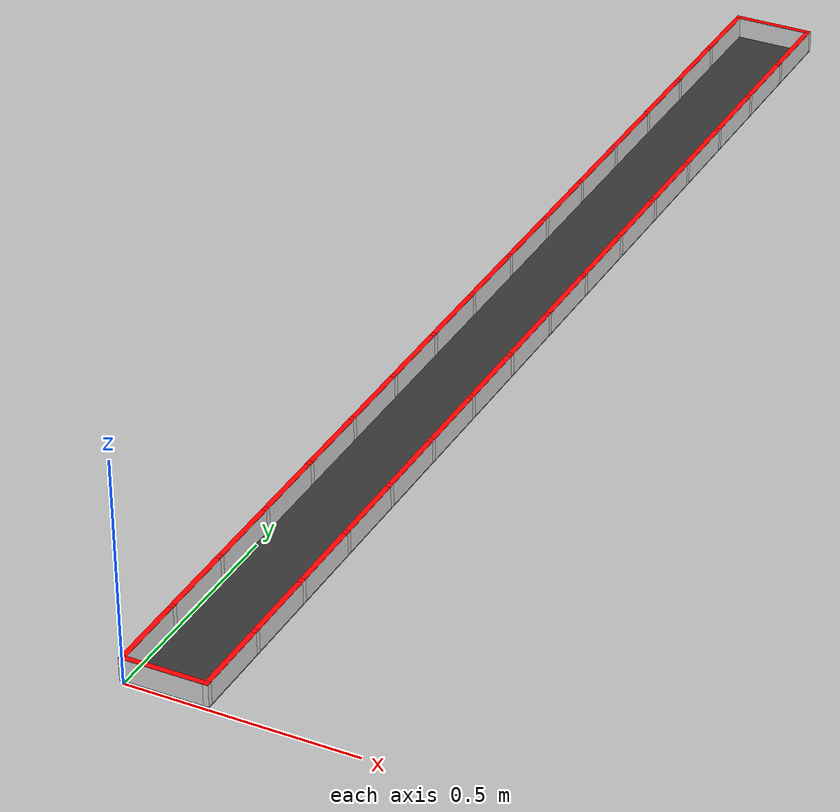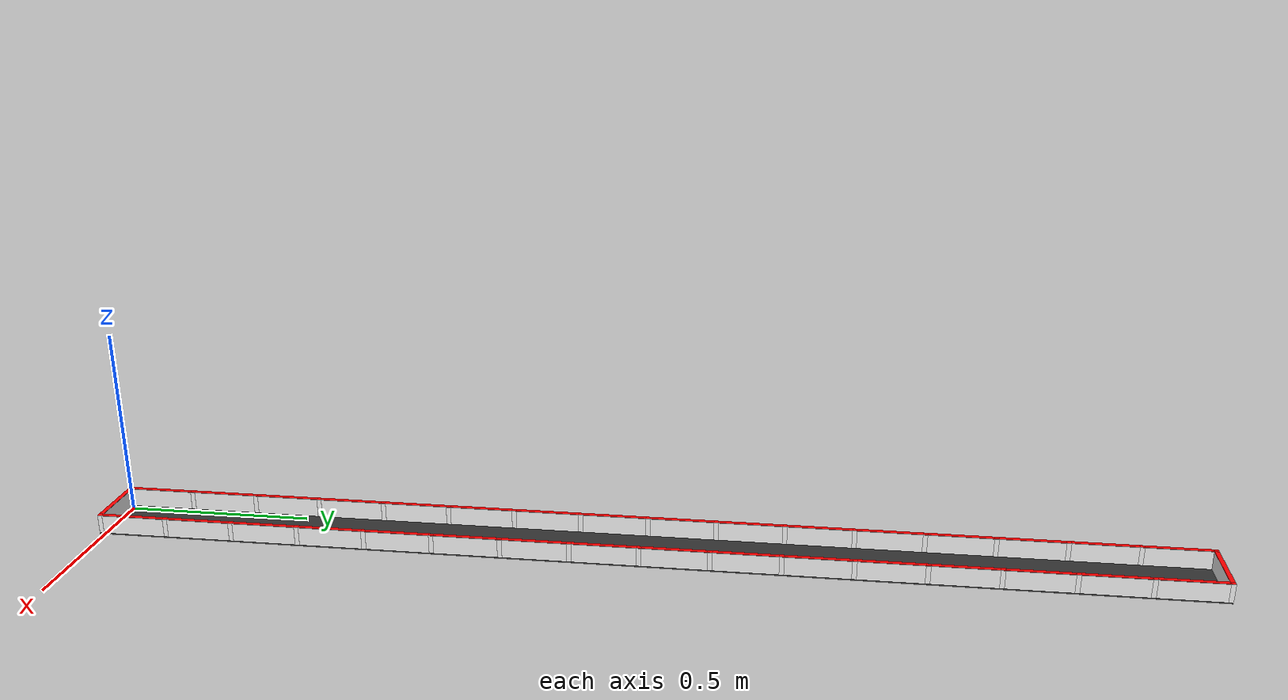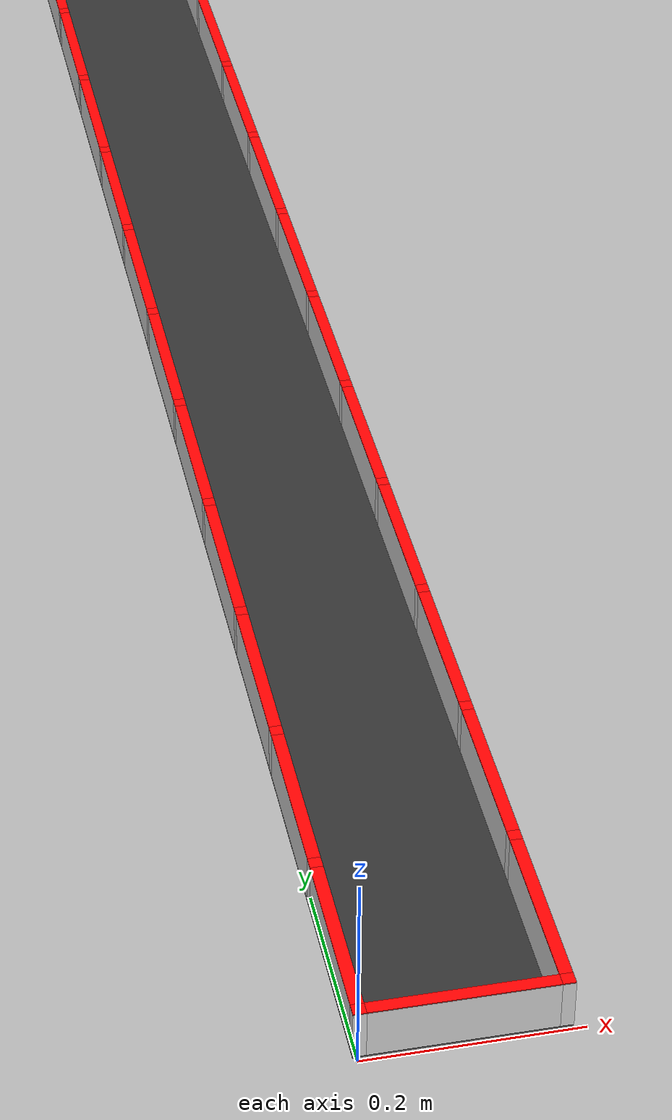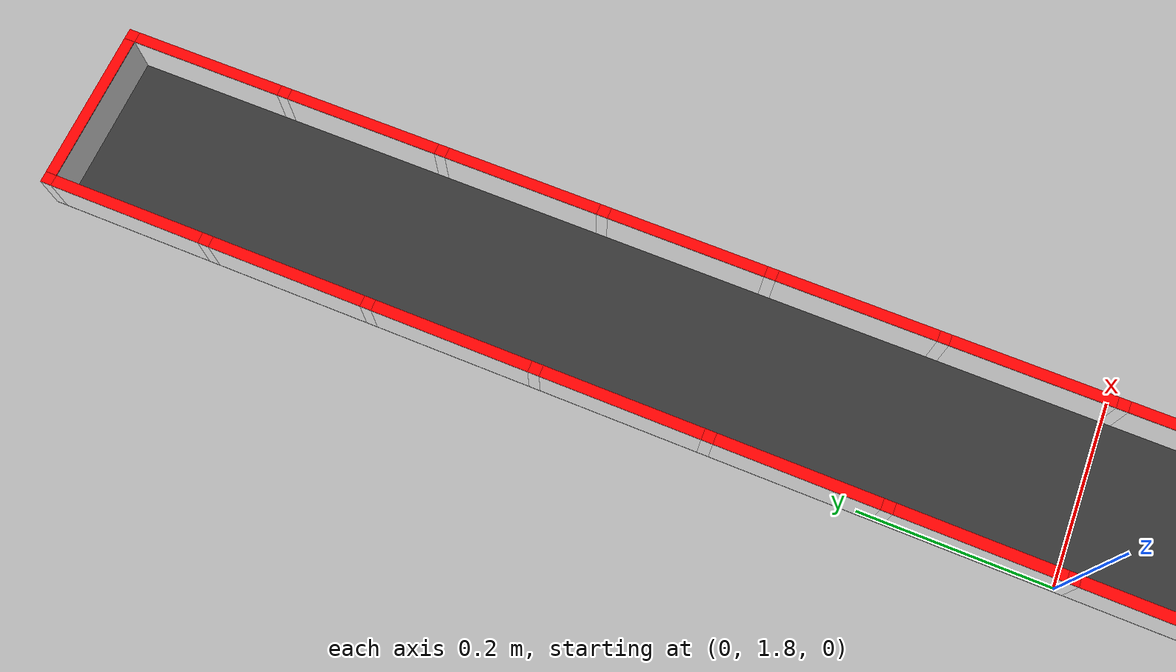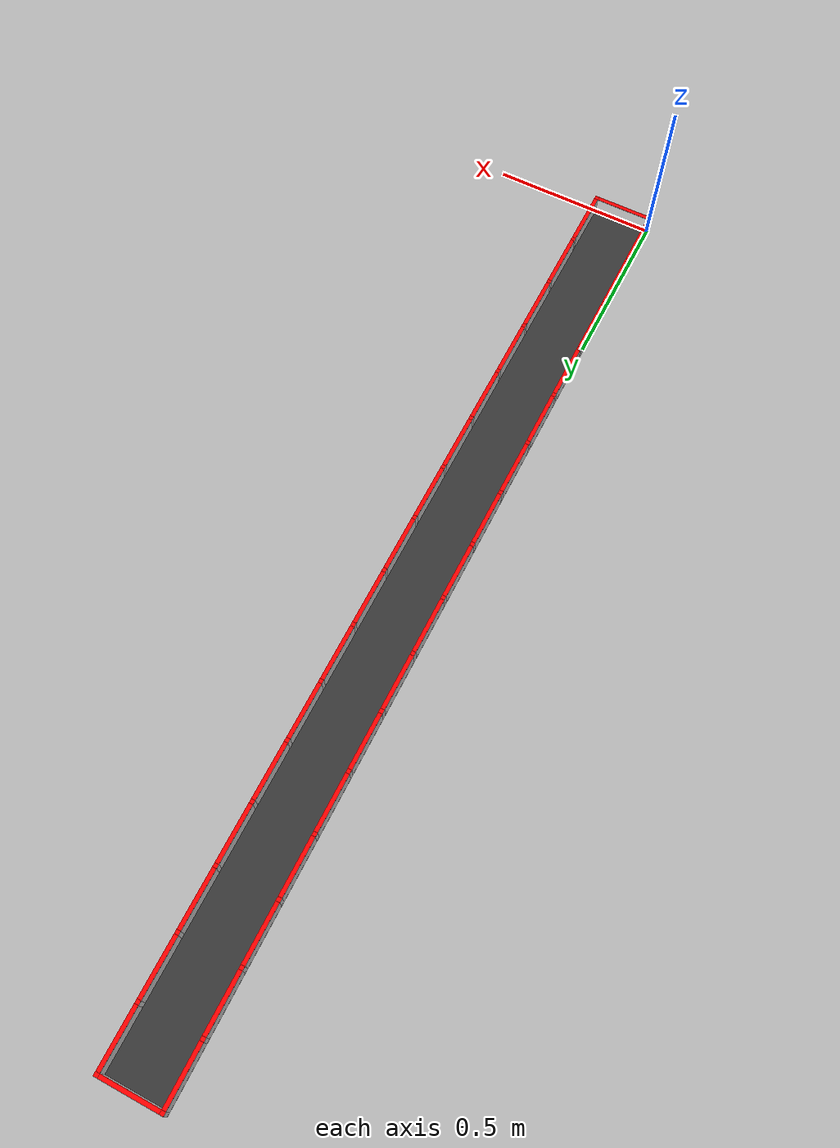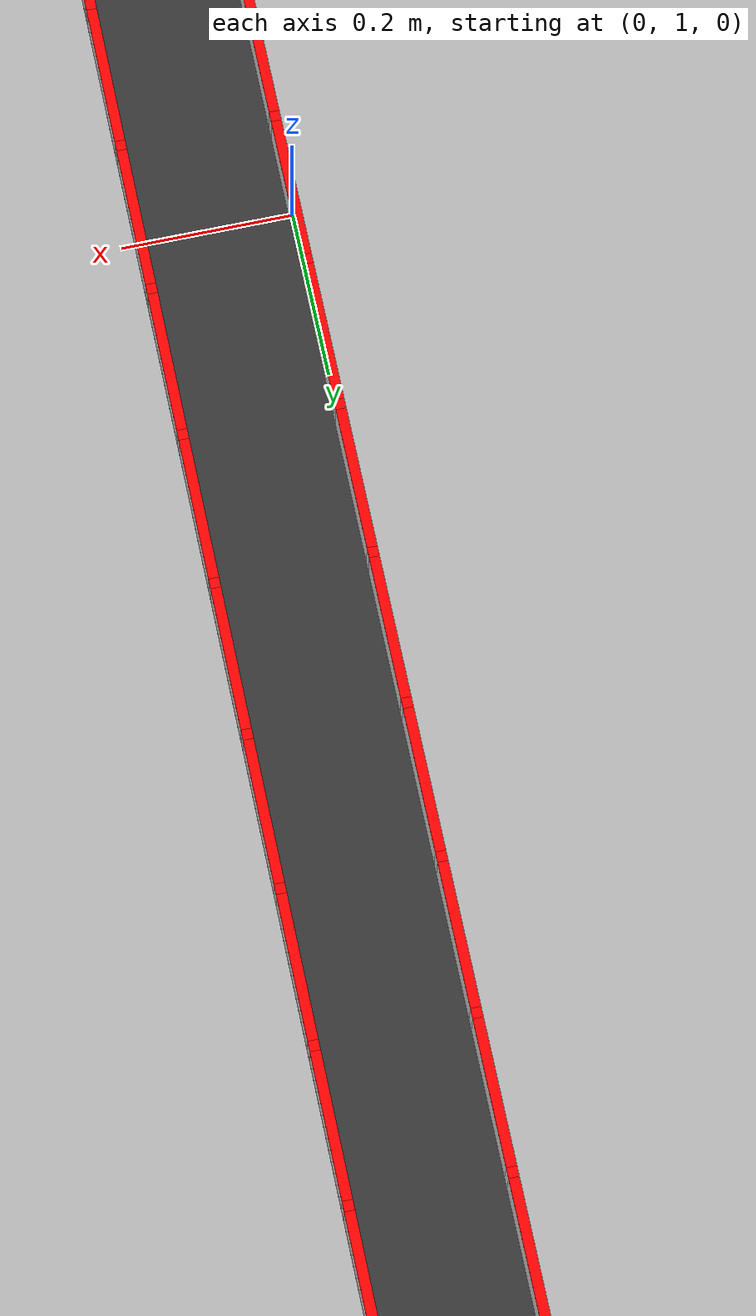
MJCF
<mujoco model="maze">
    <worldbody>
        <!--ベース板-->
        <body name="base_plate" pos="0.09 1.44 0.012">
        <geom type="plane" mass="0.1" size="0.096 1.446 0.09" rgba="0.2 0.2 0.2 1" friction="0.0 0.0 0.0"/>
        </body>

        <!-- Column 1-->
        <body pos="0.0 0.0 0.037">
            <body pos="0 0 -0.0005">
                <geom type="box" mass="0.01" size="0.006 0.006 0.0245" rgba="1 1 1 1"/>
            </body>
            <!--柱上赤蓋-->
            <body pos="0 0 0.0245">
                <geom type="box" mass="0.01" size="0.006 0.006 0.0005" rgba="1 0 0 1"/>
            </body>
        </body>

        <!-- Column 2-->
        <body pos="0.18 0.0 0.037">
            <body pos="0 0 -0.0005">
                <geom type="box" mass="0.01" size="0.006 0.006 0.0245" rgba="1 1 1 1"/>
            </body>
            <!--柱上赤蓋-->
            <body pos="0 0 0.0245">
                <geom type="box" mass="0.01" size="0.006 0.006 0.0005" rgba="1 0 0 1"/>
            </body>
        </body>

        <!-- Column 3-->
        <body pos="0.0 0.18 0.037">
            <body pos="0 0 -0.0005">
                <geom type="box" mass="0.01" size="0.006 0.006 0.0245" rgba="1 1 1 1"/>
            </body>
            <!--柱上赤蓋-->
            <body pos="0 0 0.0245">
                <geom type="box" mass="0.01" size="0.006 0.006 0.0005" rgba="1 0 0 1"/>
            </body>
        </body>

        <!-- Column 4-->
        <body pos="0.18 0.18 0.037">
            <body pos="0 0 -0.0005">
                <geom type="box" mass="0.01" size="0.006 0.006 0.0245" rgba="1 1 1 1"/>
            </body>
            <!--柱上赤蓋-->
            <body pos="0 0 0.0245">
                <geom type="box" mass="0.01" size="0.006 0.006 0.0005" rgba="1 0 0 1"/>
            </body>
        </body>

        <!-- Column 5-->
        <body pos="0.0 0.36 0.037">
            <body pos="0 0 -0.0005">
                <geom type="box" mass="0.01" size="0.006 0.006 0.0245" rgba="1 1 1 1"/>
            </body>
            <!--柱上赤蓋-->
            <body pos="0 0 0.0245">
                <geom type="box" mass="0.01" size="0.006 0.006 0.0005" rgba="1 0 0 1"/>
            </body>
        </body>

        <!-- Column 6-->
        <body pos="0.18 0.36 0.037">
            <body pos="0 0 -0.0005">
                <geom type="box" mass="0.01" size="0.006 0.006 0.0245" rgba="1 1 1 1"/>
            </body>
            <!--柱上赤蓋-->
            <body pos="0 0 0.0245">
                <geom type="box" mass="0.01" size="0.006 0.006 0.0005" rgba="1 0 0 1"/>
            </body>
        </body>

        <!-- Column 7-->
        <body pos="0.0 0.54 0.037">
            <body pos="0 0 -0.0005">
                <geom type="box" mass="0.01" size="0.006 0.006 0.0245" rgba="1 1 1 1"/>
            </body>
            <!--柱上赤蓋-->
            <body pos="0 0 0.0245">
                <geom type="box" mass="0.01" size="0.006 0.006 0.0005" rgba="1 0 0 1"/>
            </body>
        </body>

        <!-- Column 8-->
        <body pos="0.18 0.54 0.037">
            <body pos="0 0 -0.0005">
                <geom type="box" mass="0.01" size="0.006 0.006 0.0245" rgba="1 1 1 1"/>
            </body>
            <!--柱上赤蓋-->
            <body pos="0 0 0.0245">
                <geom type="box" mass="0.01" size="0.006 0.006 0.0005" rgba="1 0 0 1"/>
            </body>
        </body>

        <!-- Column 9-->
        <body pos="0.0 0.72 0.037">
            <body pos="0 0 -0.0005">
                <geom type="box" mass="0.01" size="0.006 0.006 0.0245" rgba="1 1 1 1"/>
            </body>
            <!--柱上赤蓋-->
            <body pos="0 0 0.0245">
                <geom type="box" mass="0.01" size="0.006 0.006 0.0005" rgba="1 0 0 1"/>
            </body>
        </body>

        <!-- Column 10-->
        <body pos="0.18 0.72 0.037">
            <body pos="0 0 -0.0005">
                <geom type="box" mass="0.01" size="0.006 0.006 0.0245" rgba="1 1 1 1"/>
            </body>
            <!--柱上赤蓋-->
            <body pos="0 0 0.0245">
                <geom type="box" mass="0.01" size="0.006 0.006 0.0005" rgba="1 0 0 1"/>
            </body>
        </body>

        <!-- Column 11-->
        <body pos="0.0 0.8999999999999999 0.037">
            <body pos="0 0 -0.0005">
                <geom type="box" mass="0.01" size="0.006 0.006 0.0245" rgba="1 1 1 1"/>
            </body>
            <!--柱上赤蓋-->
            <body pos="0 0 0.0245">
                <geom type="box" mass="0.01" size="0.006 0.006 0.0005" rgba="1 0 0 1"/>
            </body>
        </body>

        <!-- Column 12-->
        <body pos="0.18 0.8999999999999999 0.037">
            <body pos="0 0 -0.0005">
                <geom type="box" mass="0.01" size="0.006 0.006 0.0245" rgba="1 1 1 1"/>
            </body>
            <!--柱上赤蓋-->
            <body pos="0 0 0.0245">
                <geom type="box" mass="0.01" size="0.006 0.006 0.0005" rgba="1 0 0 1"/>
            </body>
        </body>

        <!-- Column 13-->
        <body pos="0.0 1.08 0.037">
            <body pos="0 0 -0.0005">
                <geom type="box" mass="0.01" size="0.006 0.006 0.0245" rgba="1 1 1 1"/>
            </body>
            <!--柱上赤蓋-->
            <body pos="0 0 0.0245">
                <geom type="box" mass="0.01" size="0.006 0.006 0.0005" rgba="1 0 0 1"/>
            </body>
        </body>

        <!-- Column 14-->
        <body pos="0.18 1.08 0.037">
            <body pos="0 0 -0.0005">
                <geom type="box" mass="0.01" size="0.006 0.006 0.0245" rgba="1 1 1 1"/>
            </body>
            <!--柱上赤蓋-->
            <body pos="0 0 0.0245">
                <geom type="box" mass="0.01" size="0.006 0.006 0.0005" rgba="1 0 0 1"/>
            </body>
        </body>

        <!-- Column 15-->
        <body pos="0.0 1.26 0.037">
            <body pos="0 0 -0.0005">
                <geom type="box" mass="0.01" size="0.006 0.006 0.0245" rgba="1 1 1 1"/>
            </body>
            <!--柱上赤蓋-->
            <body pos="0 0 0.0245">
                <geom type="box" mass="0.01" size="0.006 0.006 0.0005" rgba="1 0 0 1"/>
            </body>
        </body>

        <!-- Column 16-->
        <body pos="0.18 1.26 0.037">
            <body pos="0 0 -0.0005">
                <geom type="box" mass="0.01" size="0.006 0.006 0.0245" rgba="1 1 1 1"/>
            </body>
            <!--柱上赤蓋-->
            <body pos="0 0 0.0245">
                <geom type="box" mass="0.01" size="0.006 0.006 0.0005" rgba="1 0 0 1"/>
            </body>
        </body>

        <!-- Column 17-->
        <body pos="0.0 1.44 0.037">
            <body pos="0 0 -0.0005">
                <geom type="box" mass="0.01" size="0.006 0.006 0.0245" rgba="1 1 1 1"/>
            </body>
            <!--柱上赤蓋-->
            <body pos="0 0 0.0245">
                <geom type="box" mass="0.01" size="0.006 0.006 0.0005" rgba="1 0 0 1"/>
            </body>
        </body>

        <!-- Column 18-->
        <body pos="0.18 1.44 0.037">
            <body pos="0 0 -0.0005">
                <geom type="box" mass="0.01" size="0.006 0.006 0.0245" rgba="1 1 1 1"/>
            </body>
            <!--柱上赤蓋-->
            <body pos="0 0 0.0245">
                <geom type="box" mass="0.01" size="0.006 0.006 0.0005" rgba="1 0 0 1"/>
            </body>
        </body>

        <!-- Column 19-->
        <body pos="0.0 1.6199999999999999 0.037">
            <body pos="0 0 -0.0005">
                <geom type="box" mass="0.01" size="0.006 0.006 0.0245" rgba="1 1 1 1"/>
            </body>
            <!--柱上赤蓋-->
            <body pos="0 0 0.0245">
                <geom type="box" mass="0.01" size="0.006 0.006 0.0005" rgba="1 0 0 1"/>
            </body>
        </body>

        <!-- Column 20-->
        <body pos="0.18 1.6199999999999999 0.037">
            <body pos="0 0 -0.0005">
                <geom type="box" mass="0.01" size="0.006 0.006 0.0245" rgba="1 1 1 1"/>
            </body>
            <!--柱上赤蓋-->
            <body pos="0 0 0.0245">
                <geom type="box" mass="0.01" size="0.006 0.006 0.0005" rgba="1 0 0 1"/>
            </body>
        </body>

        <!-- Column 21-->
        <body pos="0.0 1.7999999999999998 0.037">
            <body pos="0 0 -0.0005">
                <geom type="box" mass="0.01" size="0.006 0.006 0.0245" rgba="1 1 1 1"/>
            </body>
            <!--柱上赤蓋-->
            <body pos="0 0 0.0245">
                <geom type="box" mass="0.01" size="0.006 0.006 0.0005" rgba="1 0 0 1"/>
            </body>
        </body>

        <!-- Column 22-->
        <body pos="0.18 1.7999999999999998 0.037">
            <body pos="0 0 -0.0005">
                <geom type="box" mass="0.01" size="0.006 0.006 0.0245" rgba="1 1 1 1"/>
            </body>
            <!--柱上赤蓋-->
            <body pos="0 0 0.0245">
                <geom type="box" mass="0.01" size="0.006 0.006 0.0005" rgba="1 0 0 1"/>
            </body>
        </body>

        <!-- Column 23-->
        <body pos="0.0 1.98 0.037">
            <body pos="0 0 -0.0005">
                <geom type="box" mass="0.01" size="0.006 0.006 0.0245" rgba="1 1 1 1"/>
            </body>
            <!--柱上赤蓋-->
            <body pos="0 0 0.0245">
                <geom type="box" mass="0.01" size="0.006 0.006 0.0005" rgba="1 0 0 1"/>
            </body>
        </body>

        <!-- Column 24-->
        <body pos="0.18 1.98 0.037">
            <body pos="0 0 -0.0005">
                <geom type="box" mass="0.01" size="0.006 0.006 0.0245" rgba="1 1 1 1"/>
            </body>
            <!--柱上赤蓋-->
            <body pos="0 0 0.0245">
                <geom type="box" mass="0.01" size="0.006 0.006 0.0005" rgba="1 0 0 1"/>
            </body>
        </body>

        <!-- Column 25-->
        <body pos="0.0 2.16 0.037">
            <body pos="0 0 -0.0005">
                <geom type="box" mass="0.01" size="0.006 0.006 0.0245" rgba="1 1 1 1"/>
            </body>
            <!--柱上赤蓋-->
            <body pos="0 0 0.0245">
                <geom type="box" mass="0.01" size="0.006 0.006 0.0005" rgba="1 0 0 1"/>
            </body>
        </body>

        <!-- Column 26-->
        <body pos="0.18 2.16 0.037">
            <body pos="0 0 -0.0005">
                <geom type="box" mass="0.01" size="0.006 0.006 0.0245" rgba="1 1 1 1"/>
            </body>
            <!--柱上赤蓋-->
            <body pos="0 0 0.0245">
                <geom type="box" mass="0.01" size="0.006 0.006 0.0005" rgba="1 0 0 1"/>
            </body>
        </body>

        <!-- Column 27-->
        <body pos="0.0 2.34 0.037">
            <body pos="0 0 -0.0005">
                <geom type="box" mass="0.01" size="0.006 0.006 0.0245" rgba="1 1 1 1"/>
            </body>
            <!--柱上赤蓋-->
            <body pos="0 0 0.0245">
                <geom type="box" mass="0.01" size="0.006 0.006 0.0005" rgba="1 0 0 1"/>
            </body>
        </body>

        <!-- Column 28-->
        <body pos="0.18 2.34 0.037">
            <body pos="0 0 -0.0005">
                <geom type="box" mass="0.01" size="0.006 0.006 0.0245" rgba="1 1 1 1"/>
            </body>
            <!--柱上赤蓋-->
            <body pos="0 0 0.0245">
                <geom type="box" mass="0.01" size="0.006 0.006 0.0005" rgba="1 0 0 1"/>
            </body>
        </body>

        <!-- Column 29-->
        <body pos="0.0 2.52 0.037">
            <body pos="0 0 -0.0005">
                <geom type="box" mass="0.01" size="0.006 0.006 0.0245" rgba="1 1 1 1"/>
            </body>
            <!--柱上赤蓋-->
            <body pos="0 0 0.0245">
                <geom type="box" mass="0.01" size="0.006 0.006 0.0005" rgba="1 0 0 1"/>
            </body>
        </body>

        <!-- Column 30-->
        <body pos="0.18 2.52 0.037">
            <body pos="0 0 -0.0005">
                <geom type="box" mass="0.01" size="0.006 0.006 0.0245" rgba="1 1 1 1"/>
            </body>
            <!--柱上赤蓋-->
            <body pos="0 0 0.0245">
                <geom type="box" mass="0.01" size="0.006 0.006 0.0005" rgba="1 0 0 1"/>
            </body>
        </body>

        <!-- Column 31-->
        <body pos="0.0 2.6999999999999997 0.037">
            <body pos="0 0 -0.0005">
                <geom type="box" mass="0.01" size="0.006 0.006 0.0245" rgba="1 1 1 1"/>
            </body>
            <!--柱上赤蓋-->
            <body pos="0 0 0.0245">
                <geom type="box" mass="0.01" size="0.006 0.006 0.0005" rgba="1 0 0 1"/>
            </body>
        </body>

        <!-- Column 32-->
        <body pos="0.18 2.6999999999999997 0.037">
            <body pos="0 0 -0.0005">
                <geom type="box" mass="0.01" size="0.006 0.006 0.0245" rgba="1 1 1 1"/>
            </body>
            <!--柱上赤蓋-->
            <body pos="0 0 0.0245">
                <geom type="box" mass="0.01" size="0.006 0.006 0.0005" rgba="1 0 0 1"/>
            </body>
        </body>

        <!-- Column 33-->
        <body pos="0.0 2.88 0.037">
            <body pos="0 0 -0.0005">
                <geom type="box" mass="0.01" size="0.006 0.006 0.0245" rgba="1 1 1 1"/>
            </body>
            <!--柱上赤蓋-->
            <body pos="0 0 0.0245">
                <geom type="box" mass="0.01" size="0.006 0.006 0.0005" rgba="1 0 0 1"/>
            </body>
        </body>

        <!-- Column 34-->
        <body pos="0.18 2.88 0.037">
            <body pos="0 0 -0.0005">
                <geom type="box" mass="0.01" size="0.006 0.006 0.0245" rgba="1 1 1 1"/>
            </body>
            <!--柱上赤蓋-->
            <body pos="0 0 0.0245">
                <geom type="box" mass="0.01" size="0.006 0.006 0.0005" rgba="1 0 0 1"/>
            </body>
        </body>

        <!-- Wall 1-->
        <body pos="0.09 0.0 0.037">
            <body pos="0 0 -0.0005">
                <geom type="box" mass="0.01" size="0.084 0.006 0.0245" rgba="1 1 1 1"/>
            </body>
            <!--壁上赤蓋-->
            <body pos="0 0 0.0245">
                <geom type="box" mass="0.01" size="0.084 0.006 0.0005" rgba="1 0 0 1"/>
            </body>
        </body>

        <!-- Wall 2-->
        <body pos="0.09 2.88 0.037">
            <body pos="0 0 -0.0005">
                <geom type="box" mass="0.01" size="0.084 0.006 0.0245" rgba="1 1 1 1"/>
            </body>
            <!--壁上赤蓋-->
            <body pos="0 0 0.0245">
                <geom type="box" mass="0.01" size="0.084 0.006 0.0005" rgba="1 0 0 1"/>
            </body>
        </body>

        <!-- Wall 3-->
        <body pos="0.0 0.09 0.037">
            <body pos="0 0 -0.0005">
                <geom type="box" mass="0.01" size="0.006 0.084 0.0245" rgba="1 1 1 1"/>
            </body>
            <!--壁上赤蓋-->
            <body pos="0 0 0.0245">
                <geom type="box" mass="0.01" size="0.006 0.084 0.0005" rgba="1 0 0 1"/>
            </body>
        </body>

        <!-- Wall 4-->
        <body pos="0.18 0.09 0.037">
            <body pos="0 0 -0.0005">
                <geom type="box" mass="0.01" size="0.006 0.084 0.0245" rgba="1 1 1 1"/>
            </body>
            <!--壁上赤蓋-->
            <body pos="0 0 0.0245">
                <geom type="box" mass="0.01" size="0.006 0.084 0.0005" rgba="1 0 0 1"/>
            </body>
        </body>

        <!-- Wall 5-->
        <body pos="0.0 0.27 0.037">
            <body pos="0 0 -0.0005">
                <geom type="box" mass="0.01" size="0.006 0.084 0.0245" rgba="1 1 1 1"/>
            </body>
            <!--壁上赤蓋-->
            <body pos="0 0 0.0245">
                <geom type="box" mass="0.01" size="0.006 0.084 0.0005" rgba="1 0 0 1"/>
            </body>
        </body>

        <!-- Wall 6-->
        <body pos="0.18 0.27 0.037">
            <body pos="0 0 -0.0005">
                <geom type="box" mass="0.01" size="0.006 0.084 0.0245" rgba="1 1 1 1"/>
            </body>
            <!--壁上赤蓋-->
            <body pos="0 0 0.0245">
                <geom type="box" mass="0.01" size="0.006 0.084 0.0005" rgba="1 0 0 1"/>
            </body>
        </body>

        <!-- Wall 7-->
        <body pos="0.0 0.44999999999999996 0.037">
            <body pos="0 0 -0.0005">
                <geom type="box" mass="0.01" size="0.006 0.084 0.0245" rgba="1 1 1 1"/>
            </body>
            <!--壁上赤蓋-->
            <body pos="0 0 0.0245">
                <geom type="box" mass="0.01" size="0.006 0.084 0.0005" rgba="1 0 0 1"/>
            </body>
        </body>

        <!-- Wall 8-->
        <body pos="0.18 0.44999999999999996 0.037">
            <body pos="0 0 -0.0005">
                <geom type="box" mass="0.01" size="0.006 0.084 0.0245" rgba="1 1 1 1"/>
            </body>
            <!--壁上赤蓋-->
            <body pos="0 0 0.0245">
                <geom type="box" mass="0.01" size="0.006 0.084 0.0005" rgba="1 0 0 1"/>
            </body>
        </body>

        <!-- Wall 9-->
        <body pos="0.0 0.63 0.037">
            <body pos="0 0 -0.0005">
                <geom type="box" mass="0.01" size="0.006 0.084 0.0245" rgba="1 1 1 1"/>
            </body>
            <!--壁上赤蓋-->
            <body pos="0 0 0.0245">
                <geom type="box" mass="0.01" size="0.006 0.084 0.0005" rgba="1 0 0 1"/>
            </body>
        </body>

        <!-- Wall 10-->
        <body pos="0.18 0.63 0.037">
            <body pos="0 0 -0.0005">
                <geom type="box" mass="0.01" size="0.006 0.084 0.0245" rgba="1 1 1 1"/>
            </body>
            <!--壁上赤蓋-->
            <body pos="0 0 0.0245">
                <geom type="box" mass="0.01" size="0.006 0.084 0.0005" rgba="1 0 0 1"/>
            </body>
        </body>

        <!-- Wall 11-->
        <body pos="0.0 0.8099999999999999 0.037">
            <body pos="0 0 -0.0005">
                <geom type="box" mass="0.01" size="0.006 0.084 0.0245" rgba="1 1 1 1"/>
            </body>
            <!--壁上赤蓋-->
            <body pos="0 0 0.0245">
                <geom type="box" mass="0.01" size="0.006 0.084 0.0005" rgba="1 0 0 1"/>
            </body>
        </body>

        <!-- Wall 12-->
        <body pos="0.18 0.8099999999999999 0.037">
            <body pos="0 0 -0.0005">
                <geom type="box" mass="0.01" size="0.006 0.084 0.0245" rgba="1 1 1 1"/>
            </body>
            <!--壁上赤蓋-->
            <body pos="0 0 0.0245">
                <geom type="box" mass="0.01" size="0.006 0.084 0.0005" rgba="1 0 0 1"/>
            </body>
        </body>

        <!-- Wall 13-->
        <body pos="0.0 0.9899999999999999 0.037">
            <body pos="0 0 -0.0005">
                <geom type="box" mass="0.01" size="0.006 0.084 0.0245" rgba="1 1 1 1"/>
            </body>
            <!--壁上赤蓋-->
            <body pos="0 0 0.0245">
                <geom type="box" mass="0.01" size="0.006 0.084 0.0005" rgba="1 0 0 1"/>
            </body>
        </body>

        <!-- Wall 14-->
        <body pos="0.18 0.9899999999999999 0.037">
            <body pos="0 0 -0.0005">
                <geom type="box" mass="0.01" size="0.006 0.084 0.0245" rgba="1 1 1 1"/>
            </body>
            <!--壁上赤蓋-->
            <body pos="0 0 0.0245">
                <geom type="box" mass="0.01" size="0.006 0.084 0.0005" rgba="1 0 0 1"/>
            </body>
        </body>

        <!-- Wall 15-->
        <body pos="0.0 1.1700000000000002 0.037">
            <body pos="0 0 -0.0005">
                <geom type="box" mass="0.01" size="0.006 0.084 0.0245" rgba="1 1 1 1"/>
            </body>
            <!--壁上赤蓋-->
            <body pos="0 0 0.0245">
                <geom type="box" mass="0.01" size="0.006 0.084 0.0005" rgba="1 0 0 1"/>
            </body>
        </body>

        <!-- Wall 16-->
        <body pos="0.18 1.1700000000000002 0.037">
            <body pos="0 0 -0.0005">
                <geom type="box" mass="0.01" size="0.006 0.084 0.0245" rgba="1 1 1 1"/>
            </body>
            <!--壁上赤蓋-->
            <body pos="0 0 0.0245">
                <geom type="box" mass="0.01" size="0.006 0.084 0.0005" rgba="1 0 0 1"/>
            </body>
        </body>

        <!-- Wall 17-->
        <body pos="0.0 1.35 0.037">
            <body pos="0 0 -0.0005">
                <geom type="box" mass="0.01" size="0.006 0.084 0.0245" rgba="1 1 1 1"/>
            </body>
            <!--壁上赤蓋-->
            <body pos="0 0 0.0245">
                <geom type="box" mass="0.01" size="0.006 0.084 0.0005" rgba="1 0 0 1"/>
            </body>
        </body>

        <!-- Wall 18-->
        <body pos="0.18 1.35 0.037">
            <body pos="0 0 -0.0005">
                <geom type="box" mass="0.01" size="0.006 0.084 0.0245" rgba="1 1 1 1"/>
            </body>
            <!--壁上赤蓋-->
            <body pos="0 0 0.0245">
                <geom type="box" mass="0.01" size="0.006 0.084 0.0005" rgba="1 0 0 1"/>
            </body>
        </body>

        <!-- Wall 19-->
        <body pos="0.0 1.53 0.037">
            <body pos="0 0 -0.0005">
                <geom type="box" mass="0.01" size="0.006 0.084 0.0245" rgba="1 1 1 1"/>
            </body>
            <!--壁上赤蓋-->
            <body pos="0 0 0.0245">
                <geom type="box" mass="0.01" size="0.006 0.084 0.0005" rgba="1 0 0 1"/>
            </body>
        </body>

        <!-- Wall 20-->
        <body pos="0.18 1.53 0.037">
            <body pos="0 0 -0.0005">
                <geom type="box" mass="0.01" size="0.006 0.084 0.0245" rgba="1 1 1 1"/>
            </body>
            <!--壁上赤蓋-->
            <body pos="0 0 0.0245">
                <geom type="box" mass="0.01" size="0.006 0.084 0.0005" rgba="1 0 0 1"/>
            </body>
        </body>

        <!-- Wall 21-->
        <body pos="0.0 1.71 0.037">
            <body pos="0 0 -0.0005">
                <geom type="box" mass="0.01" size="0.006 0.084 0.0245" rgba="1 1 1 1"/>
            </body>
            <!--壁上赤蓋-->
            <body pos="0 0 0.0245">
                <geom type="box" mass="0.01" size="0.006 0.084 0.0005" rgba="1 0 0 1"/>
            </body>
        </body>

        <!-- Wall 22-->
        <body pos="0.18 1.71 0.037">
            <body pos="0 0 -0.0005">
                <geom type="box" mass="0.01" size="0.006 0.084 0.0245" rgba="1 1 1 1"/>
            </body>
            <!--壁上赤蓋-->
            <body pos="0 0 0.0245">
                <geom type="box" mass="0.01" size="0.006 0.084 0.0005" rgba="1 0 0 1"/>
            </body>
        </body>

        <!-- Wall 23-->
        <body pos="0.0 1.89 0.037">
            <body pos="0 0 -0.0005">
                <geom type="box" mass="0.01" size="0.006 0.084 0.0245" rgba="1 1 1 1"/>
            </body>
            <!--壁上赤蓋-->
            <body pos="0 0 0.0245">
                <geom type="box" mass="0.01" size="0.006 0.084 0.0005" rgba="1 0 0 1"/>
            </body>
        </body>

        <!-- Wall 24-->
        <body pos="0.18 1.89 0.037">
            <body pos="0 0 -0.0005">
                <geom type="box" mass="0.01" size="0.006 0.084 0.0245" rgba="1 1 1 1"/>
            </body>
            <!--壁上赤蓋-->
            <body pos="0 0 0.0245">
                <geom type="box" mass="0.01" size="0.006 0.084 0.0005" rgba="1 0 0 1"/>
            </body>
        </body>

        <!-- Wall 25-->
        <body pos="0.0 2.07 0.037">
            <body pos="0 0 -0.0005">
                <geom type="box" mass="0.01" size="0.006 0.084 0.0245" rgba="1 1 1 1"/>
            </body>
            <!--壁上赤蓋-->
            <body pos="0 0 0.0245">
                <geom type="box" mass="0.01" size="0.006 0.084 0.0005" rgba="1 0 0 1"/>
            </body>
        </body>

        <!-- Wall 26-->
        <body pos="0.18 2.07 0.037">
            <body pos="0 0 -0.0005">
                <geom type="box" mass="0.01" size="0.006 0.084 0.0245" rgba="1 1 1 1"/>
            </body>
            <!--壁上赤蓋-->
            <body pos="0 0 0.0245">
                <geom type="box" mass="0.01" size="0.006 0.084 0.0005" rgba="1 0 0 1"/>
            </body>
        </body>

        <!-- Wall 27-->
        <body pos="0.0 2.25 0.037">
            <body pos="0 0 -0.0005">
                <geom type="box" mass="0.01" size="0.006 0.084 0.0245" rgba="1 1 1 1"/>
            </body>
            <!--壁上赤蓋-->
            <body pos="0 0 0.0245">
                <geom type="box" mass="0.01" size="0.006 0.084 0.0005" rgba="1 0 0 1"/>
            </body>
        </body>

        <!-- Wall 28-->
        <body pos="0.18 2.25 0.037">
            <body pos="0 0 -0.0005">
                <geom type="box" mass="0.01" size="0.006 0.084 0.0245" rgba="1 1 1 1"/>
            </body>
            <!--壁上赤蓋-->
            <body pos="0 0 0.0245">
                <geom type="box" mass="0.01" size="0.006 0.084 0.0005" rgba="1 0 0 1"/>
            </body>
        </body>

        <!-- Wall 29-->
        <body pos="0.0 2.4299999999999997 0.037">
            <body pos="0 0 -0.0005">
                <geom type="box" mass="0.01" size="0.006 0.084 0.0245" rgba="1 1 1 1"/>
            </body>
            <!--壁上赤蓋-->
            <body pos="0 0 0.0245">
                <geom type="box" mass="0.01" size="0.006 0.084 0.0005" rgba="1 0 0 1"/>
            </body>
        </body>

        <!-- Wall 30-->
        <body pos="0.18 2.4299999999999997 0.037">
            <body pos="0 0 -0.0005">
                <geom type="box" mass="0.01" size="0.006 0.084 0.0245" rgba="1 1 1 1"/>
            </body>
            <!--壁上赤蓋-->
            <body pos="0 0 0.0245">
                <geom type="box" mass="0.01" size="0.006 0.084 0.0005" rgba="1 0 0 1"/>
            </body>
        </body>

        <!-- Wall 31-->
        <body pos="0.0 2.61 0.037">
            <body pos="0 0 -0.0005">
                <geom type="box" mass="0.01" size="0.006 0.084 0.0245" rgba="1 1 1 1"/>
            </body>
            <!--壁上赤蓋-->
            <body pos="0 0 0.0245">
                <geom type="box" mass="0.01" size="0.006 0.084 0.0005" rgba="1 0 0 1"/>
            </body>
        </body>

        <!-- Wall 32-->
        <body pos="0.18 2.61 0.037">
            <body pos="0 0 -0.0005">
                <geom type="box" mass="0.01" size="0.006 0.084 0.0245" rgba="1 1 1 1"/>
            </body>
            <!--壁上赤蓋-->
            <body pos="0 0 0.0245">
                <geom type="box" mass="0.01" size="0.006 0.084 0.0005" rgba="1 0 0 1"/>
            </body>
        </body>

        <!-- Wall 33-->
        <body pos="0.0 2.7899999999999996 0.037">
            <body pos="0 0 -0.0005">
                <geom type="box" mass="0.01" size="0.006 0.084 0.0245" rgba="1 1 1 1"/>
            </body>
            <!--壁上赤蓋-->
            <body pos="0 0 0.0245">
                <geom type="box" mass="0.01" size="0.006 0.084 0.0005" rgba="1 0 0 1"/>
            </body>
        </body>

        <!-- Wall 34-->
        <body pos="0.18 2.7899999999999996 0.037">
            <body pos="0 0 -0.0005">
                <geom type="box" mass="0.01" size="0.006 0.084 0.0245" rgba="1 1 1 1"/>
            </body>
            <!--壁上赤蓋-->
            <body pos="0 0 0.0245">
                <geom type="box" mass="0.01" size="0.006 0.084 0.0005" rgba="1 0 0 1"/>
            </body>
        </body>
    </worldbody>
</mujoco>
